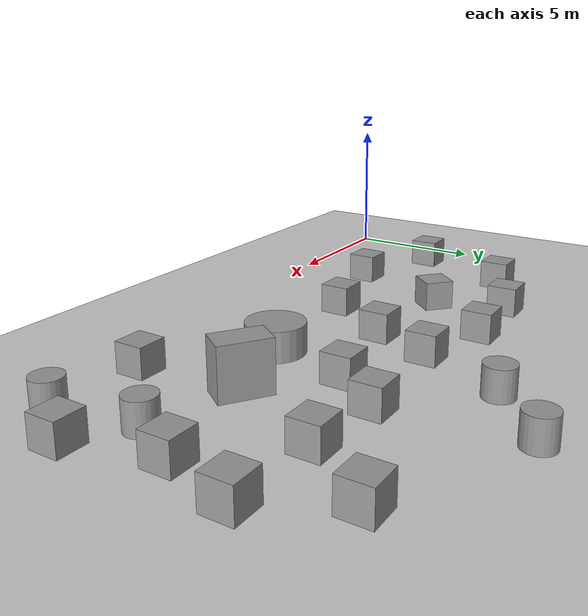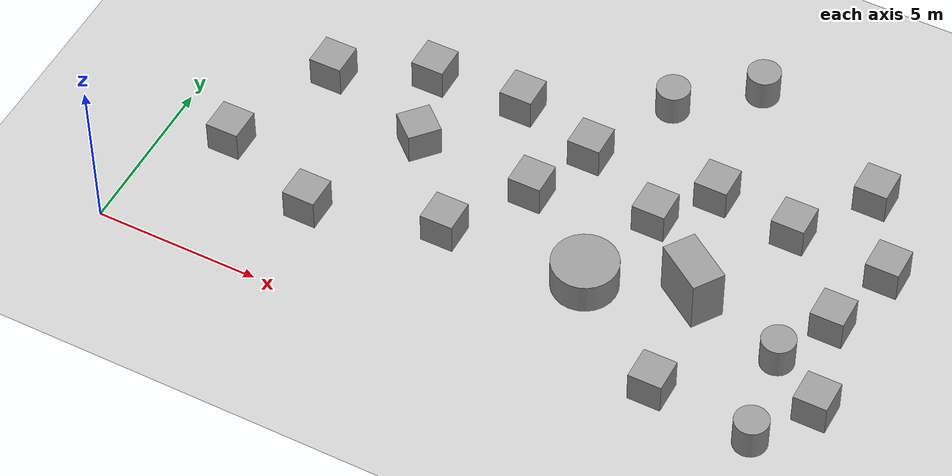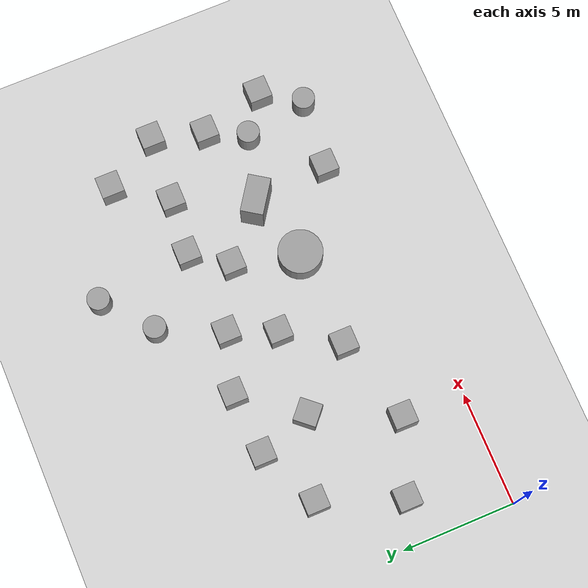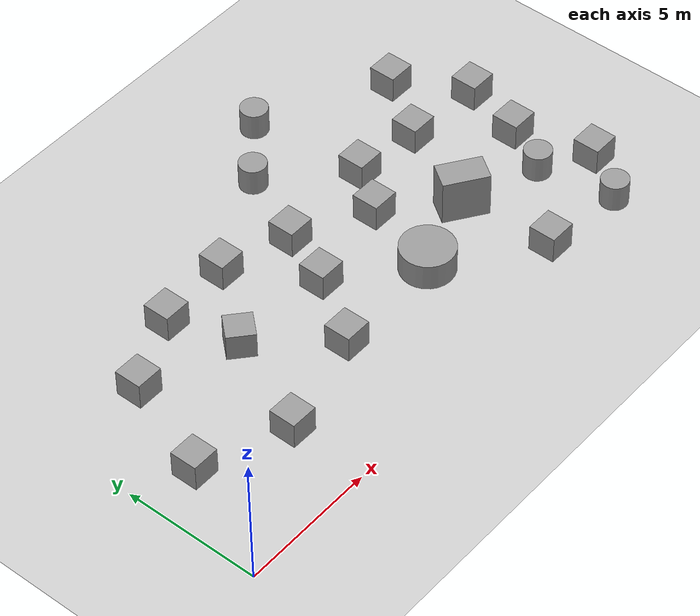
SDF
<sdf version="1.7">
 <world name="default">
  <model name="ground_plane">
   <static>1</static>
   <link name="link">
    <collision name="collision">
     <geometry><plane><normal>0 0 1</normal><size>100 100</size></plane></geometry>
     <surface><friction><ode><mu>100</mu><mu2>50</mu2></ode></friction></surface>
    </collision>
    <visual name="visual">
     <cast_shadows>0</cast_shadows>
     <geometry><plane><normal>0 0 1</normal><size>100 100</size></plane></geometry>
     <material>
      <script><uri>file://media/materials/scripts/gazebo.material</uri><name>Gazebo/Grey</name></script>
     </material>
    </visual>
   </link>
  </model>
  <model name="unit_box_0_clone_2">
   <pose>10.4651 6.22586 0.499995 0 -1e-05 0</pose>
   <link name="link">
    <inertial>
     <mass>1</mass>
     <inertia>
      <ixx>0.166667</ixx>
      <ixy>0</ixy>
      <ixz>0</ixz>
      <iyy>0.166667</iyy>
      <iyz>0</iyz>
      <izz>0.166667</izz>
     </inertia>
    </inertial>
    <collision name="collision"><geometry><box><size>1 1 1</size></box></geometry></collision>
    <visual name="visual">
     <geometry><box><size>1 1 1</size></box></geometry>
     <material>
      <script><name>Gazebo/Grey</name><uri>file://media/materials/scripts/gazebo.material</uri></script>
     </material>
    </visual>
   </link>
  </model>
  <model name="unit_cylinder">
   <pose>13.2396 4.04758 0.499995 -5e-06 5e-06 1e-06</pose>
   <link name="link">
    <inertial>
     <mass>1</mass>
     <inertia><ixx>0.145833</ixx><ixy>0</ixy><ixz>0</ixz><iyy>0.145833</iyy><iyz>0</iyz><izz>0.125</izz></inertia>
    </inertial>
    <collision name="collision">
     <geometry><cylinder><radius>0.97662</radius><length>1</length></cylinder></geometry>
    </collision>
    <visual name="visual">
     <geometry><cylinder><radius>0.97662</radius><length>1</length></cylinder></geometry>
     <material>
      <script><name>Gazebo/Grey</name><uri>file://media/materials/scripts/gazebo.material</uri></script>
     </material>
    </visual>
   </link>
  </model>
  <model name="unit_cylinder_clone_0">
   <pose>19.6221 1.21871 0.499993 -3e-06 -1e-06 -0</pose>
   <link name="link">
    <inertial>
     <mass>1</mass>
     <inertia><ixx>0.145833</ixx><ixy>0</ixy><ixz>0</ixz><iyy>0.145833</iyy><iyz>0</iyz><izz>0.125</izz></inertia>
    </inertial>
    <collision name="collision">
     <geometry><cylinder><radius>0.5</radius><length>1</length></cylinder></geometry>
    </collision>
    <visual name="visual">
     <geometry><cylinder><radius>0.5</radius><length>1</length></cylinder></geometry>
     <material>
      <script><name>Gazebo/Grey</name><uri>file://media/materials/scripts/gazebo.material</uri></script>
     </material>
    </visual>
   </link>
  </model>
  <model name="unit_cylinder_clone_1">
   <pose>19.1111 4.04231 0.499994 -1e-06 -0 -0</pose>
   <link name="link">
    <inertial>
     <mass>1</mass>
     <inertia><ixx>0.145833</ixx><ixy>0</ixy><ixz>0</ixz><iyy>0.145833</iyy><iyz>0</iyz><izz>0.125</izz></inertia>
    </inertial>
    <collision name="collision">
     <geometry><cylinder><radius>0.5</radius><length>1</length></cylinder></geometry>
    </collision>
    <visual name="visual">
     <geometry><cylinder><radius>0.5</radius><length>1</length></cylinder></geometry>
     <material>
      <script><name>Gazebo/Grey</name><uri>file://media/materials/scripts/gazebo.material</uri></script>
     </material>
    </visual>
   </link>
  </model>
  <model name="unit_box_0_clone_1_clone_clone_0">
   <pose>16.5328 1.53662 0.499995 0 -1e-05 0</pose>
   <link name="link">
    <inertial>
     <mass>1</mass>
     <inertia>
      <ixx>0.166667</ixx>
      <ixy>0</ixy>
      <ixz>0</ixz>
      <iyy>0.166667</iyy>
      <iyz>0</iyz>
      <izz>0.166667</izz>
     </inertia>
    </inertial>
    <collision name="collision"><geometry><box><size>1 1 1</size></box></geometry></collision>
    <visual name="visual">
     <geometry><box><size>1 1 1</size></box></geometry>
     <material>
      <script><name>Gazebo/Grey</name><uri>file://media/materials/scripts/gazebo.material</uri></script>
     </material>
    </visual>
   </link>
  </model>
  <model name="unit_box_0_clone_clone">
   <pose>16.119 4.90667 0.847215 0 -0 0.970613</pose>
   <link name="link">
    <inertial>
     <mass>1</mass>
     <inertia>
      <ixx>0.166667</ixx>
      <ixy>0</ixy>
      <ixz>0</ixz>
      <iyy>0.166667</iyy>
      <iyz>0</iyz>
      <izz>0.166667</izz>
     </inertia>
    </inertial>
    <collision name="collision"><geometry><box><size>1 1.66664 1.69443</size></box></geometry></collision>
    <visual name="visual">
     <geometry><box><size>1 1.66664 1.69443</size></box></geometry>
     <material>
      <script><name>Gazebo/Grey</name><uri>file://media/materials/scripts/gazebo.material</uri></script>
     </material>
    </visual>
   </link>
  </model>
  <model name="unit_box_0_clone_3">
   <pose>8.93229 3.86811 0.499995 -1e-05 0 0</pose>
   <link name="link">
    <inertial>
     <mass>1</mass>
     <inertia>
      <ixx>0.166667</ixx>
      <ixy>0</ixy>
      <ixz>0</ixz>
      <iyy>0.166667</iyy>
      <iyz>0</iyz>
      <izz>0.166667</izz>
     </inertia>
    </inertial>
    <collision name="collision"><geometry><box><size>1 1 1</size></box></geometry></collision>
    <visual name="visual">
     <geometry><box><size>1 1 1</size></box></geometry>
     <material>
      <script><name>Gazebo/Grey</name><uri>file://media/materials/scripts/gazebo.material</uri></script>
     </material>
    </visual>
   </link>
  </model>
  <model name="unit_box_0_clone_5">
   <pose>6.72879 6.45008 0.5 0 -0 0.845612</pose>
   <link name="link">
    <inertial>
     <mass>1</mass>
     <inertia>
      <ixx>0.166667</ixx>
      <ixy>0</ixy>
      <ixz>0</ixz>
      <iyy>0.166667</iyy>
      <iyz>0</iyz>
      <izz>0.166667</izz>
     </inertia>
    </inertial>
    <collision name="collision"><geometry><box><size>1 1 1</size></box></geometry></collision>
    <visual name="visual">
     <geometry><box><size>1 1 1</size></box></geometry>
     <material>
      <script><name>Gazebo/Grey</name><uri>file://media/materials/scripts/gazebo.material</uri></script>
     </material>
    </visual>
   </link>
  </model>
  <model name="unit_box_0_clone_1_clone_clone_0_clone">
   <pose>19.9785 5.74794 0.499995 0 -1e-05 0</pose>
   <link name="link">
    <inertial>
     <mass>1</mass>
     <inertia>
      <ixx>0.166667</ixx>
      <ixy>0</ixy>
      <ixz>0</ixz>
      <iyy>0.166667</iyy>
      <iyz>0</iyz>
      <izz>0.166667</izz>
     </inertia>
    </inertial>
    <collision name="collision"><geometry><box><size>1 1 1</size></box></geometry></collision>
    <visual name="visual">
     <geometry><box><size>1 1 1</size></box></geometry>
     <material>
      <script><name>Gazebo/Grey</name><uri>file://media/materials/scripts/gazebo.material</uri></script>
     </material>
    </visual>
   </link>
  </model>
  <model name="unit_box_0_clone_1_clone_clone_0_clone_0">
   <pose>20.7672 2.91831 0.499995 -1e-05 0 0</pose>
   <link name="link">
    <inertial>
     <mass>1</mass>
     <inertia>
      <ixx>0.166667</ixx>
      <ixy>0</ixy>
      <ixz>0</ixz>
      <iyy>0.166667</iyy>
      <iyz>0</iyz>
      <izz>0.166667</izz>
     </inertia>
    </inertial>
    <collision name="collision"><geometry><box><size>1 1 1</size></box></geometry></collision>
    <visual name="visual">
     <geometry><box><size>1 1 1</size></box></geometry>
     <material>
      <script><name>Gazebo/Grey</name><uri>file://media/materials/scripts/gazebo.material</uri></script>
     </material>
    </visual>
   </link>
  </model>
  <model name="unit_box_0_clone_1_clone_clone_0_clone_3">
   <pose>13.9987 6.92007 0.499995 -1e-05 0 0</pose>
   <link name="link">
    <inertial>
     <mass>1</mass>
     <inertia>
      <ixx>0.166667</ixx>
      <ixy>0</ixy>
      <ixz>0</ixz>
      <iyy>0.166667</iyy>
      <iyz>0</iyz>
      <izz>0.166667</izz>
     </inertia>
    </inertial>
    <collision name="collision"><geometry><box><size>1 1 1</size></box></geometry></collision>
    <visual name="visual">
     <geometry><box><size>1 1 1</size></box></geometry>
     <material>
      <script><name>Gazebo/Grey</name><uri>file://media/materials/scripts/gazebo.material</uri></script>
     </material>
    </visual>
   </link>
  </model>
  <model name="unit_box_0_clone_1_clone_clone_0_clone_5">
   <pose>5.10578 2.84273 0.499995 0 -1e-05 -0.010932</pose>
   <link name="link">
    <inertial>
     <mass>1</mass>
     <inertia>
      <ixx>0.166667</ixx>
      <ixy>0</ixy>
      <ixz>0</ixz>
      <iyy>0.166667</iyy>
      <iyz>0</iyz>
      <izz>0.166667</izz>
     </inertia>
    </inertial>
    <collision name="collision"><geometry><box><size>1 1 1</size></box></geometry></collision>
    <visual name="visual">
     <geometry><box><size>1 1 1</size></box></geometry>
     <material>
      <script><name>Gazebo/Grey</name><uri>file://media/materials/scripts/gazebo.material</uri></script>
     </material>
    </visual>
   </link>
  </model>
  <model name="unit_box_0_clone_1_clone_clone_0_clone_6">
   <pose>1.91691 4.04861 0.499995 0 -1e-05 0</pose>
   <link name="link">
    <inertial>
     <mass>1</mass>
     <inertia>
      <ixx>0.166667</ixx>
      <ixy>0</ixy>
      <ixz>0</ixz>
      <iyy>0.166667</iyy>
      <iyz>0</iyz>
      <izz>0.166667</izz>
     </inertia>
    </inertial>
    <collision name="collision"><geometry><box><size>1 1 1</size></box></geometry></collision>
    <visual name="visual">
     <geometry><box><size>1 1 1</size></box></geometry>
     <material>
      <script><name>Gazebo/Grey</name><uri>file://media/materials/scripts/gazebo.material</uri></script>
     </material>
    </visual>
   </link>
  </model>
  <model name="unit_box_0_clone_1_clone_clone_0_clone_8">
   <pose>3.28023 7.60288 0.499995 0 -1e-05 0</pose>
   <link name="link">
    <inertial>
     <mass>1</mass>
     <inertia>
      <ixx>0.166667</ixx>
      <ixy>0</ixy>
      <ixz>0</ixz>
      <iyy>0.166667</iyy>
      <iyz>0</iyz>
      <izz>0.166667</izz>
     </inertia>
    </inertial>
    <collision name="collision"><geometry><box><size>1 1 1</size></box></geometry></collision>
    <visual name="visual">
     <geometry><box><size>1 1 1</size></box></geometry>
     <material>
      <script><name>Gazebo/Grey</name><uri>file://media/materials/scripts/gazebo.material</uri></script>
     </material>
    </visual>
   </link>
  </model>
  <model name="unit_box_0_clone_1_clone_clone_0_clone_9">
   <pose>5.95406 8.85783 0.499995 0 -1e-05 0</pose>
   <link name="link">
    <inertial>
     <mass>1</mass>
     <inertia>
      <ixx>0.166667</ixx>
      <ixy>0</ixy>
      <ixz>0</ixz>
      <iyy>0.166667</iyy>
      <iyz>0</iyz>
      <izz>0.166667</izz>
     </inertia>
    </inertial>
    <collision name="collision"><geometry><box><size>1 1 1</size></box></geometry></collision>
    <visual name="visual">
     <geometry><box><size>1 1 1</size></box></geometry>
     <material>
      <script><name>Gazebo/Grey</name><uri>file://media/materials/scripts/gazebo.material</uri></script>
     </material>
    </visual>
   </link>
  </model>
  <model name="unit_box_0_clone_1_clone_clone_0_clone_10">
   <pose>8.74465 9.00896 0.499995 0 -1e-05 0</pose>
   <link name="link">
    <inertial>
     <mass>1</mass>
     <inertia>
      <ixx>0.166667</ixx>
      <ixy>0</ixy>
      <ixz>0</ixz>
      <iyy>0.166667</iyy>
      <iyz>0</iyz>
      <izz>0.166667</izz>
     </inertia>
    </inertial>
    <collision name="collision"><geometry><box><size>1 1 1</size></box></geometry></collision>
    <visual name="visual">
     <geometry><box><size>1 1 1</size></box></geometry>
     <material>
      <script><name>Gazebo/Grey</name><uri>file://media/materials/scripts/gazebo.material</uri></script>
     </material>
    </visual>
   </link>
  </model>
  <model name="unit_box_0_clone_1_clone_clone_0_clone_11">
   <pose>11.3053 8.26055 0.499995 0 -1e-05 0</pose>
   <link name="link">
    <inertial>
     <mass>1</mass>
     <inertia>
      <ixx>0.166667</ixx>
      <ixy>0</ixy>
      <ixz>0</ixz>
      <iyy>0.166667</iyy>
      <iyz>0</iyz>
      <izz>0.166667</izz>
     </inertia>
    </inertial>
    <collision name="collision"><geometry><box><size>1 1 1</size></box></geometry></collision>
    <visual name="visual">
     <geometry><box><size>1 1 1</size></box></geometry>
     <material>
      <script><name>Gazebo/Grey</name><uri>file://media/materials/scripts/gazebo.material</uri></script>
     </material>
    </visual>
   </link>
  </model>
  <model name="unit_box_0_clone_1_clone_clone_0_clone_14">
   <pose>19.1925 10.4678 0.499995 -1e-05 0 0</pose>
   <link name="link">
    <inertial>
     <mass>1</mass>
     <inertia>
      <ixx>0.166667</ixx>
      <ixy>0</ixy>
      <ixz>0</ixz>
      <iyy>0.166667</iyy>
      <iyz>0</iyz>
      <izz>0.166667</izz>
     </inertia>
    </inertial>
    <collision name="collision"><geometry><box><size>1 1 1</size></box></geometry></collision>
    <visual name="visual">
     <geometry><box><size>1 1 1</size></box></geometry>
     <material>
      <script><name>Gazebo/Grey</name><uri>file://media/materials/scripts/gazebo.material</uri></script>
     </material>
    </visual>
   </link>
  </model>
  <model name="unit_box_0_clone_1_clone_clone_0_clone_15">
   <pose>15.1665 8.51272 0.499995 0 -1e-05 0</pose>
   <link name="link">
    <inertial>
     <mass>1</mass>
     <inertia>
      <ixx>0.166667</ixx>
      <ixy>0</ixy>
      <ixz>0</ixz>
      <iyy>0.166667</iyy>
      <iyz>0</iyz>
      <izz>0.166667</izz>
     </inertia>
    </inertial>
    <collision name="collision"><geometry><box><size>1 1 1</size></box></geometry></collision>
    <visual name="visual">
     <geometry><box><size>1 1 1</size></box></geometry>
     <material>
      <script><name>Gazebo/Grey</name><uri>file://media/materials/scripts/gazebo.material</uri></script>
     </material>
    </visual>
   </link>
  </model>
  <model name="unit_box_0_clone_1_clone_clone_0_clone_16">
   <pose>17.6613 8.24236 0.499995 0 -1e-05 0</pose>
   <link name="link">
    <inertial>
     <mass>1</mass>
     <inertia>
      <ixx>0.166667</ixx>
      <ixy>0</ixy>
      <ixz>0</ixz>
      <iyy>0.166667</iyy>
      <iyz>0</iyz>
      <izz>0.166667</izz>
     </inertia>
    </inertial>
    <collision name="collision"><geometry><box><size>1 1 1</size></box></geometry></collision>
    <visual name="visual">
     <geometry><box><size>1 1 1</size></box></geometry>
     <material>
      <script><name>Gazebo/Grey</name><uri>file://media/materials/scripts/gazebo.material</uri></script>
     </material>
    </visual>
   </link>
  </model>
  <model name="unit_box_0_clone_1_clone_clone_0_clone_17">
   <pose>20.6142 8.02762 0.499995 0 -1e-05 0</pose>
   <link name="link">
    <inertial>
     <mass>1</mass>
     <inertia>
      <ixx>0.166667</ixx>
      <ixy>0</ixy>
      <ixz>0</ixz>
      <iyy>0.166667</iyy>
      <iyz>0</iyz>
      <izz>0.166667</izz>
     </inertia>
    </inertial>
    <collision name="collision"><geometry><box><size>1 1 1</size></box></geometry></collision>
    <visual name="visual">
     <geometry><box><size>1 1 1</size></box></geometry>
     <material>
      <script><name>Gazebo/Grey</name><uri>file://media/materials/scripts/gazebo.material</uri></script>
     </material>
    </visual>
   </link>
  </model>
  <model name="unit_cylinder_clone_clone_clone_1">
   <pose>12.5788 10.9982 0.499994 -3e-06 -1e-06 -0</pose>
   <link name="link">
    <inertial>
     <mass>1</mass>
     <inertia><ixx>0.145833</ixx><ixy>0</ixy><ixz>0</ixz><iyy>0.145833</iyy><iyz>0</iyz><izz>0.125</izz></inertia>
    </inertial>
    <collision name="collision">
     <geometry><cylinder><radius>0.5</radius><length>1</length></cylinder></geometry>
    </collision>
    <visual name="visual">
     <geometry><cylinder><radius>0.5</radius><length>1</length></cylinder></geometry>
     <material>
      <script><name>Gazebo/Grey</name><uri>file://media/materials/scripts/gazebo.material</uri></script>
     </material>
    </visual>
   </link>
  </model>
  <model name="unit_cylinder_clone_clone_clone_2">
   <pose>14.6392 12.7411 0.499996 3e-06 1e-06 -0</pose>
   <link name="link">
    <inertial>
     <mass>1</mass>
     <inertia><ixx>0.145833</ixx><ixy>0</ixy><ixz>0</ixz><iyy>0.145833</iyy><iyz>0</iyz><izz>0.125</izz></inertia>
    </inertial>
    <collision name="collision">
     <geometry><cylinder><radius>0.5</radius><length>1</length></cylinder></geometry>
    </collision>
    <visual name="visual">
     <geometry><cylinder><radius>0.5</radius><length>1</length></cylinder></geometry>
     <material>
      <script><name>Gazebo/Grey</name><uri>file://media/materials/scripts/gazebo.material</uri></script>
     </material>
    </visual>
   </link>
  </model>
 </world>
</sdf>
